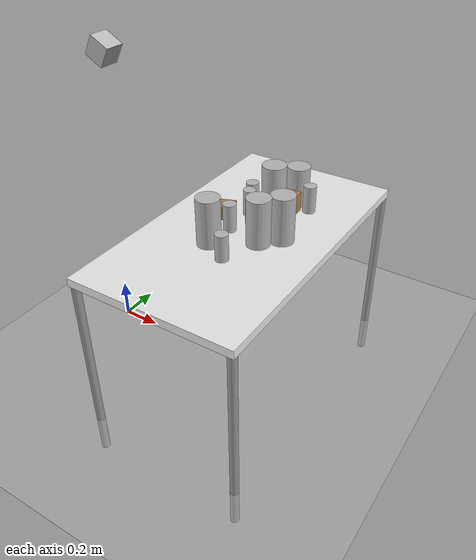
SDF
<sdf version="1.6">
 <world name="default">
  <model name="ground_plane">
   <static>1</static>
   <link name="link">
    <collision name="collision">
     <geometry><plane><normal>0 0 1</normal><size>100 100</size></plane></geometry>
     <surface><friction><ode><mu>100</mu><mu2>50</mu2></ode></friction></surface>
    </collision>
    <visual name="visual">
     <cast_shadows>0</cast_shadows>
     <geometry><plane><normal>0 0 1</normal><size>100 100</size></plane></geometry>
     <material>
      <script><uri>file://media/materials/scripts/gazebo.material</uri><name>Gazebo/Grey</name></script>
     </material>
    </visual>
   </link>
  </model>
  <gravity>0 0 -9.8</gravity>
  <magnetic_field>6e-06 2.3e-05 -4.2e-05</magnetic_field>
  <atmosphere type="adiabatic"/>
  <physics name="default_physics" default="0" type="ode">
   <max_step_size>0.001</max_step_size>
   <real_time_factor>1</real_time_factor>
   <real_time_update_rate>1000</real_time_update_rate>
  </physics>
  <scene><ambient>0.4 0.4 0.4 1</ambient><background>0.7 0.7 0.7 1</background><shadows>1</shadows></scene>
  <spherical_coordinates>
   <surface_model>EARTH_WGS84</surface_model>
   <latitude_deg>0</latitude_deg>
   <longitude_deg>0</longitude_deg>
   <elevation>0</elevation>
   <heading_deg>0</heading_deg>
  </spherical_coordinates>
  <model name="kinect2_victor_head">
   <pose>0.07 0 1.5 0 0.5 0</pose>
   <static>1</static>
   <link name="kinect2_victor_head">
    <inertial>
     <mass>1</mass>
     <inertia><ixx>1</ixx><ixy>0</ixy><ixz>0</ixz><iyy>1</iyy><iyz>0</iyz><izz>1</izz></inertia>
    </inertial>
    <collision name="collision"><geometry><box><size>0.1 0.1 0.1</size></box></geometry></collision>
    <visual name="visual"><geometry><box><size>0.1 0.1 0.1</size></box></geometry></visual>
    <sensor name="camera" type="depth">
     <camera name="__default__">
      <horizontal_fov>1.578</horizontal_fov>
      <image><width>1920</width><height>1080</height><format>B8G8R8</format></image>
      <clip><near>0.05</near><far>2.5</far></clip>
      <depth_camera><output>depths</output></depth_camera>
     </camera>
     <plugin name="kinect2_victor_head_plugin" filename="libgazebo_ros_openni_kinect.so">
      <cameraName>kinect2_victor_head</cameraName>
      <alwaysOn>1</alwaysOn>
      <updateRate>3</updateRate>
      <imageTopicName>hd/image_color_rect</imageTopicName>
      <depthImageTopicName>hd/image_depth_rect</depthImageTopicName>
      <pointCloudTopicName>hd/points</pointCloudTopicName>
      <cameraInfoTopicName>hd/camera_info</cameraInfoTopicName>
      <depthImageCameraInfoTopicName>hd/camera_info</depthImageCameraInfoTopicName>
      <frameName>kinect2_victor_head_optical_frame</frameName>
      <baseline>0.07</baseline>
      <distortion_k1>0.0</distortion_k1>
      <distortion_k2>0.0</distortion_k2>
      <distortion_k3>0.0</distortion_k3>
      <distortion_t1>0.0</distortion_t1>
      <distortion_t2>0.0</distortion_t2>
      <pointCloudCutoff>0.05</pointCloudCutoff>
      <robotNamespace>/</robotNamespace>
     </plugin>
     <always_on>1</always_on>
     <update_rate>3</update_rate>
    </sensor>
    <gravity>0</gravity>
   </link>
  </model>
  <model name="table">
   <static>1</static>
   <link name="link">
    <collision name="surface">
     <pose>0 0 1 0 -0 0</pose>
     <geometry><box><size>1.5 0.8 0.03</size></box></geometry>
     <surface><friction><ode><mu>0.6</mu><mu2>0.6</mu2></ode></friction></surface>
    </collision>
    <visual name="visual1">
     <pose>0 0 1 0 -0 0</pose>
     <geometry><box><size>1.4 0.8 0.04</size></box></geometry>
     <material>
      <script><uri>file://media/materials/scripts/gazebo.material</uri><name>Gazebo/White</name></script>
     </material>
    </visual>
    <collision name="front_left_leg">
     <pose>0.68 0.38 0.5 0 -0 0</pose>
     <geometry><cylinder><radius>0.02</radius><length>1</length></cylinder></geometry>
    </collision>
    <visual name="front_left_leg">
     <pose>0.68 0.38 0.5 0 -0 0</pose>
     <geometry><cylinder><radius>0.02</radius><length>1</length></cylinder></geometry>
     <material>
      <script><uri>file://media/materials/scripts/gazebo.material</uri><name>Gazebo/Grey</name></script>
     </material>
    </visual>
    <collision name="front_right_leg">
     <pose>0.68 -0.38 0.5 0 -0 0</pose>
     <geometry><cylinder><radius>0.02</radius><length>1</length></cylinder></geometry>
    </collision>
    <visual name="front_right_leg">
     <pose>0.68 -0.38 0.5 0 -0 0</pose>
     <geometry><cylinder><radius>0.02</radius><length>1</length></cylinder></geometry>
     <material>
      <script><uri>file://media/materials/scripts/gazebo.material</uri><name>Gazebo/Grey</name></script>
     </material>
    </visual>
    <collision name="back_right_leg">
     <pose>-0.68 -0.38 0.5 0 -0 0</pose>
     <geometry><cylinder><radius>0.02</radius><length>1</length></cylinder></geometry>
    </collision>
    <visual name="back_right_leg">
     <pose>-0.68 -0.38 0.5 0 -0 0</pose>
     <geometry><cylinder><radius>0.02</radius><length>1</length></cylinder></geometry>
     <material>
      <script><uri>file://media/materials/scripts/gazebo.material</uri><name>Gazebo/Grey</name></script>
     </material>
    </visual>
    <collision name="back_left_leg">
     <pose>-0.68 0.38 0.5 0 -0 0</pose>
     <geometry><cylinder><radius>0.02</radius><length>1</length></cylinder></geometry>
    </collision>
    <visual name="back_left_leg">
     <pose>-0.68 0.38 0.5 0 -0 0</pose>
     <geometry><cylinder><radius>0.02</radius><length>1</length></cylinder></geometry>
     <material>
      <script><uri>file://media/materials/scripts/gazebo.material</uri><name>Gazebo/Grey</name></script>
     </material>
    </visual>
    <inertial>
     <inertia><ixx>1</ixx><ixy>0</ixy><ixz>0</ixz><iyy>1</iyy><iyz>0</iyz><izz>1</izz></inertia>
     <mass>1</mass>
    </inertial>
   </link>
   <pose>0.8 0 -0.2 0 0 -1.5708</pose>
  </model>
  <model name="beer">
   <link name="link">
    <pose>0 0 0.115 0 -0 0</pose>
    <inertial>
     <mass>0.39</mass>
     <inertia><ixx>0.00058</ixx><ixy>0</ixy><ixz>0</ixz><iyy>0.00058</iyy><iyz>0</iyz><izz>0.00019</izz></inertia>
    </inertial>
    <collision name="collision">
     <geometry><cylinder><radius>0.055</radius><length>0.23</length></cylinder></geometry>
    </collision>
    <visual name="visual">
     <geometry><cylinder><radius>0.055</radius><length>0.23</length></cylinder></geometry>
     <material>
      <script>
       <uri>model://beer/materials/scripts</uri>
       <uri>model://beer/materials/textures</uri>
       <name>Beer/Diffuse</name>
      </script>
     </material>
    </visual>
   </link>
   <pose>0.985549 0.006624 0.814995 2.3e-05 9.3e-05 -0.246708</pose>
  </model>
  <light name="user_spot_light_0" type="spot">
   <pose>0 0 20 0 -0 0</pose>
   <diffuse>0.5 0.5 0.5 1</diffuse>
   <specular>0.1 0.1 0.1 1</specular>
   <direction>0 0 -1</direction>
   <attenuation>
    <range>20</range>
    <constant>0.5</constant>
    <linear>0.01</linear>
    <quadratic>0.001</quadratic>
   </attenuation>
   <cast_shadows>0</cast_shadows>
   <spot><inner_angle>0.6</inner_angle><outer_angle>1</outer_angle><falloff>1</falloff></spot>
  </light>
  <model name="wood_cube_10cm">
   <link name="link">
    <pose>0 0 0.05 0 -0 0</pose>
    <inertial>
     <mass>0.5167</mass>
     <inertia>
      <ixx>0.000861167</ixx>
      <ixy>0</ixy>
      <ixz>0</ixz>
      <iyy>0.000861167</iyy>
      <iyz>0</iyz>
      <izz>0.000861167</izz>
     </inertia>
    </inertial>
    <collision name="collision">
     <geometry><box><size>0.1 0.1 0.1</size></box></geometry>
     <surface>
      <contact>
       <poissons_ratio>0.347</poissons_ratio>
       <elastic_modulus>8.8e+09</elastic_modulus>
       <ode><kp>100000</kp><kd>100</kd><max_vel>100</max_vel><min_depth>0.001</min_depth></ode>
      </contact>
      <friction>
       <torsional>
        <coefficient>1</coefficient>
        <use_patch_radius>0</use_patch_radius>
        <surface_radius>0.01</surface_radius>
       </torsional>
      </friction>
     </surface>
    </collision>
    <visual name="visual">
     <geometry><box><size>0.1 0.1 0.1</size></box></geometry>
     <material>
      <script><uri>file://media/materials/scripts/gazebo.material</uri><name>Gazebo/Wood</name></script>
     </material>
    </visual>
   </link>
   <pose>0.878672 0.234947 0.813987 0 -0 0.03537</pose>
  </model>
  <model name="wood_cube_7_5cm">
   <link name="link">
    <pose>0 0 0.0375 0 -0 0</pose>
    <inertial>
     <mass>0.2249</mass>
     <inertia>
      <ixx>0.000210844</ixx>
      <ixy>0</ixy>
      <ixz>0</ixz>
      <iyy>0.000210844</iyy>
      <iyz>0</iyz>
      <izz>0.000210844</izz>
     </inertia>
    </inertial>
    <collision name="collision">
     <geometry><box><size>0.075 0.075 0.075</size></box></geometry>
     <surface>
      <contact>
       <poissons_ratio>0.347</poissons_ratio>
       <elastic_modulus>8.8e+09</elastic_modulus>
       <ode><kp>100000</kp><kd>100</kd><max_vel>100</max_vel><min_depth>0.001</min_depth></ode>
      </contact>
      <friction>
       <torsional>
        <coefficient>1</coefficient>
        <use_patch_radius>0</use_patch_radius>
        <surface_radius>0.01</surface_radius>
       </torsional>
      </friction>
     </surface>
    </collision>
    <visual name="visual">
     <geometry><box><size>0.075 0.075 0.075</size></box></geometry>
     <material>
      <script><uri>file://media/materials/scripts/gazebo.material</uri><name>Gazebo/Wood</name></script>
     </material>
    </visual>
   </link>
   <pose>0.669447 0.050323 0.813995 0 -0 1.92763</pose>
  </model>
  <model name="beer_0">
   <link name="link">
    <pose>0 0 0.115 0 -0 0</pose>
    <inertial>
     <mass>0.39</mass>
     <inertia><ixx>0.00058</ixx><ixy>0</ixy><ixz>0</ixz><iyy>0.00058</iyy><iyz>0</iyz><izz>0.00019</izz></inertia>
    </inertial>
    <collision name="collision">
     <geometry><cylinder><radius>0.055</radius><length>0.23</length></cylinder></geometry>
    </collision>
    <visual name="visual">
     <geometry><cylinder><radius>0.055</radius><length>0.23</length></cylinder></geometry>
     <material>
      <script>
       <uri>model://beer/materials/scripts</uri>
       <uri>model://beer/materials/textures</uri>
       <name>Beer/Diffuse</name>
      </script>
     </material>
    </visual>
   </link>
   <pose>0.878057 0.345201 0.78049 3e-06 1e-06 0.025271</pose>
  </model>
  <model name="wood_cube_5cm">
   <link name="link">
    <pose>0 0 0.025 0 -0 0</pose>
    <inertial>
     <mass>0.0565</mass>
     <inertia>
      <ixx>2.35417e-05</ixx>
      <ixy>0</ixy>
      <ixz>0</ixz>
      <iyy>2.35417e-05</iyy>
      <iyz>0</iyz>
      <izz>2.35417e-05</izz>
     </inertia>
    </inertial>
    <collision name="collision">
     <geometry><box><size>0.05 0.05 0.05</size></box></geometry>
     <surface>
      <contact>
       <poissons_ratio>0.347</poissons_ratio>
       <elastic_modulus>8.8e+09</elastic_modulus>
       <ode><kp>100000</kp><kd>1</kd><max_vel>1</max_vel><min_depth>0.001</min_depth></ode>
      </contact>
      <friction>
       <torsional>
        <coefficient>1</coefficient>
        <use_patch_radius>0</use_patch_radius>
        <surface_radius>0.05</surface_radius>
       </torsional>
      </friction>
     </surface>
    </collision>
    <visual name="visual">
     <geometry><box><size>0.05 0.05 0.05</size></box></geometry>
     <material>
      <script><uri>file://media/materials/scripts/gazebo.material</uri><name>Gazebo/Wood</name></script>
     </material>
    </visual>
   </link>
   <pose>0.865571 -0.019179 0.863999 -3.14159 -0 -1.21104</pose>
  </model>
  <audio><device>default</device></audio>
  <model name="beer_1">
   <link name="link">
    <pose>0 0 0.115 0 -0 0</pose>
    <inertial>
     <mass>0.39</mass>
     <inertia><ixx>0.00058</ixx><ixy>0</ixy><ixz>0</ixz><iyy>0.00058</iyy><iyz>0</iyz><izz>0.00019</izz></inertia>
    </inertial>
    <collision name="collision">
     <geometry><cylinder><radius>0.055</radius><length>0.23</length></cylinder></geometry>
    </collision>
    <visual name="visual">
     <geometry><cylinder><radius>0.055</radius><length>0.23</length></cylinder></geometry>
     <material>
      <script>
       <uri>model://beer/materials/scripts</uri>
       <uri>model://beer/materials/textures</uri>
       <name>Beer/Diffuse</name>
      </script>
     </material>
    </visual>
   </link>
   <pose>0.870096 0.127206 0.872506 3.2e-05 9.9e-05 0.058554</pose>
  </model>
  <model name="beer_2">
   <link name="link">
    <pose>0 0 0.115 0 -0 0</pose>
    <inertial>
     <mass>0.39</mass>
     <inertia><ixx>0.00058</ixx><ixy>0</ixy><ixz>0</ixz><iyy>0.00058</iyy><iyz>0</iyz><izz>0.00019</izz></inertia>
    </inertial>
    <collision name="collision">
     <geometry><cylinder><radius>0.055</radius><length>0.23</length></cylinder></geometry>
    </collision>
    <visual name="visual">
     <geometry><cylinder><radius>0.055</radius><length>0.23</length></cylinder></geometry>
     <material>
      <script>
       <uri>model://beer/materials/scripts</uri>
       <uri>model://beer/materials/textures</uri>
       <name>Beer/Diffuse</name>
      </script>
     </material>
    </visual>
   </link>
   <pose>0.912468 -0.071211 0.815001 2.7e-05 4e-06 2.67686</pose>
  </model>
  <model name="beer_3">
   <link name="link">
    <pose>0 0 0.115 0 -0 0</pose>
    <inertial>
     <mass>0.39</mass>
     <inertia><ixx>0.00058</ixx><ixy>0</ixy><ixz>0</ixz><iyy>0.00058</iyy><iyz>0</iyz><izz>0.00019</izz></inertia>
    </inertial>
    <collision name="collision">
     <geometry><cylinder><radius>0.055</radius><length>0.23</length></cylinder></geometry>
    </collision>
    <visual name="visual">
     <geometry><cylinder><radius>0.055</radius><length>0.23</length></cylinder></geometry>
     <material>
      <script>
       <uri>model://beer/materials/scripts</uri>
       <uri>model://beer/materials/textures</uri>
       <name>Beer/Diffuse</name>
      </script>
     </material>
    </visual>
   </link>
   <pose>0.732372 -0.182314 0.814991 9e-06 7e-06 1.09472</pose>
  </model>
  <model name="can_fanta">
   <link name="link">
    <inertial>
     <mass>0.39</mass>
     <inertia>
      <ixx>0.00055575</ixx>
      <ixy>0</ixy>
      <ixz>0</ixz>
      <iyy>0.00055575</iyy>
      <iyz>0</iyz>
      <izz>0.0001755</izz>
     </inertia>
    </inertial>
    <visual name="visual">
     <geometry><cylinder><radius>0.03</radius><length>0.13</length></cylinder></geometry>
     <material>
      <script>
       <uri>model://can_fanta/materials/scripts</uri>
       <uri>model://can_fanta/materials/textures</uri>
       <name>fanta</name>
      </script>
     </material>
    </visual>
    <collision name="collision">
     <geometry><cylinder><radius>0.03</radius><length>0.13</length></cylinder></geometry>
    </collision>
   </link>
   <static>0</static>
   <pose>0.798924 0.215742 0.879991 5e-06 1.4e-05 1.26536</pose>
  </model>
  <model name="can_pepsi">
   <link name="link">
    <inertial>
     <mass>0.39</mass>
     <inertia>
      <ixx>0.00055575</ixx>
      <ixy>0</ixy>
      <ixz>0</ixz>
      <iyy>0.00055575</iyy>
      <iyz>0</iyz>
      <izz>0.0001755</izz>
     </inertia>
    </inertial>
    <visual name="visual">
     <geometry><cylinder><radius>0.03</radius><length>0.13</length></cylinder></geometry>
     <material>
      <script>
       <uri>model://can_pepsi/materials/scripts</uri>
       <uri>model://can_pepsi/materials/textures</uri>
       <name>pepsi</name>
      </script>
     </material>
    </visual>
    <collision name="collision">
     <geometry><cylinder><radius>0.03</radius><length>0.13</length></cylinder></geometry>
    </collision>
   </link>
   <static>0</static>
   <pose>0.770252 -0.076366 0.912492 3.14155 -5.7e-05 -1.03206</pose>
  </model>
  <model name="can_sprite">
   <link name="link">
    <inertial>
     <mass>0.39</mass>
     <inertia>
      <ixx>0.00055575</ixx>
      <ixy>0</ixy>
      <ixz>0</ixz>
      <iyy>0.00055575</iyy>
      <iyz>0</iyz>
      <izz>0.0001755</izz>
     </inertia>
    </inertial>
    <visual name="visual">
     <geometry><cylinder><radius>0.03</radius><length>0.13</length></cylinder></geometry>
     <material>
      <script>
       <uri>model://can_sprite/materials/scripts</uri>
       <uri>model://can_sprite/materials/textures</uri>
       <name>sprite</name>
      </script>
     </material>
    </visual>
    <collision name="collision">
     <geometry><cylinder><radius>0.03</radius><length>0.13</length></cylinder></geometry>
    </collision>
   </link>
   <static>0</static>
   <pose>0.790082 0.070961 0.88 1e-06 -3e-06 -1.55269</pose>
  </model>
  <model name="can_fanta_0">
   <link name="link">
    <inertial>
     <mass>0.39</mass>
     <inertia>
      <ixx>0.00055575</ixx>
      <ixy>0</ixy>
      <ixz>0</ixz>
      <iyy>0.00055575</iyy>
      <iyz>0</iyz>
      <izz>0.0001755</izz>
     </inertia>
    </inertial>
    <visual name="visual">
     <geometry><cylinder><radius>0.03</radius><length>0.13</length></cylinder></geometry>
     <material>
      <script>
       <uri>model://can_fanta/materials/scripts</uri>
       <uri>model://can_fanta/materials/textures</uri>
       <name>fanta</name>
      </script>
     </material>
    </visual>
    <collision name="collision">
     <geometry><cylinder><radius>0.03</radius><length>0.13</length></cylinder></geometry>
    </collision>
   </link>
   <static>0</static>
   <pose>0.910524 0.051979 0.880001 -1.5e-05 2.8e-05 -1.0649</pose>
  </model>
  <model name="can_pepsi_0">
   <link name="link">
    <inertial>
     <mass>0.39</mass>
     <inertia>
      <ixx>0.00055575</ixx>
      <ixy>0</ixy>
      <ixz>0</ixz>
      <iyy>0.00055575</iyy>
      <iyz>0</iyz>
      <izz>0.0001755</izz>
     </inertia>
    </inertial>
    <visual name="visual">
     <geometry><cylinder><radius>0.03</radius><length>0.13</length></cylinder></geometry>
     <material>
      <script>
       <uri>model://can_pepsi/materials/scripts</uri>
       <uri>model://can_pepsi/materials/textures</uri>
       <name>pepsi</name>
      </script>
     </material>
    </visual>
    <collision name="collision">
     <geometry><cylinder><radius>0.03</radius><length>0.13</length></cylinder></geometry>
    </collision>
   </link>
   <static>0</static>
   <pose>0.847628 -0.254043 0.879991 2.7e-05 -2e-06 -2.50768</pose>
  </model>
  <model name="can_sprite_0">
   <link name="link">
    <inertial>
     <mass>0.39</mass>
     <inertia>
      <ixx>0.00055575</ixx>
      <ixy>0</ixy>
      <ixz>0</ixz>
      <iyy>0.00055575</iyy>
      <iyz>0</iyz>
      <izz>0.0001755</izz>
     </inertia>
    </inertial>
    <visual name="visual">
     <geometry><cylinder><radius>0.03</radius><length>0.13</length></cylinder></geometry>
     <material>
      <script>
       <uri>model://can_sprite/materials/scripts</uri>
       <uri>model://can_sprite/materials/textures</uri>
       <name>sprite</name>
      </script>
     </material>
    </visual>
    <collision name="collision">
     <geometry><cylinder><radius>0.03</radius><length>0.13</length></cylinder></geometry>
    </collision>
   </link>
   <static>0</static>
   <pose>0.98502 0.255342 0.912501 2.4e-05 7e-06 -1.54706</pose>
  </model>
  <model name="can_coke">
   <link name="link">
    <pose>0.003937 0.004724 -0.18 0 -0 0</pose>
    <inertial>
     <mass>0.39</mass>
     <inertia>
      <ixx>0.00055575</ixx>
      <ixy>0</ixy>
      <ixz>0</ixz>
      <iyy>0.00055575</iyy>
      <iyz>0</iyz>
      <izz>0.0001755</izz>
     </inertia>
    </inertial>
    <collision name="collision">
     <geometry><cylinder><radius>0.03</radius><length>0.13</length></cylinder></geometry>
    </collision>
    <visual name="visual">
     <material>
      <script>
       <uri>model://can_coke/materials/scripts</uri>
       <uri>model://can_coke/materials/textures</uri>
       <name>coke</name>
      </script>
     </material>
     <geometry><cylinder><radius>0.03</radius><length>0.13</length></cylinder></geometry>
    </visual>
   </link>
   <pose>0.716163 0.204842 1.05999 7e-06 -1e-06 -2.60842</pose>
  </model>
  <model name="can_coke_0">
   <link name="link">
    <pose>0.003937 0.004724 -0.18 0 -0 0</pose>
    <inertial>
     <mass>0.39</mass>
     <inertia>
      <ixx>0.00055575</ixx>
      <ixy>0</ixy>
      <ixz>0</ixz>
      <iyy>0.00055575</iyy>
      <iyz>0</iyz>
      <izz>0.0001755</izz>
     </inertia>
    </inertial>
    <collision name="collision">
     <geometry><cylinder><radius>0.03</radius><length>0.13</length></cylinder></geometry>
    </collision>
    <visual name="visual">
     <material>
      <script>
       <uri>model://can_coke/materials/scripts</uri>
       <uri>model://can_coke/materials/textures</uri>
       <name>coke</name>
      </script>
     </material>
     <geometry><cylinder><radius>0.03</radius><length>0.13</length></cylinder></geometry>
    </visual>
   </link>
   <pose>0.74797 0.130612 1.06 1e-05 -4e-06 2.57023</pose>
  </model>
 </world>
</sdf>
